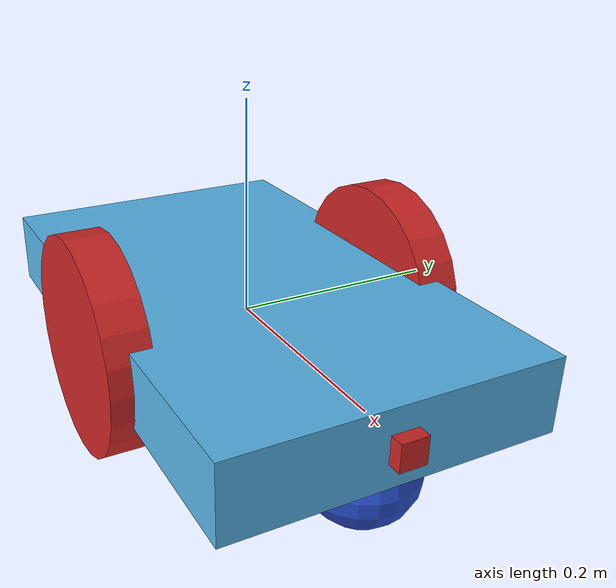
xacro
<?xml version="1.0" ?>
<robot name="robot" xmlns:xacro="http://www.ros.org/wiki/xacro">

  <xacro:include filename="$(find robot_description)/urdf/camera.xacro" />
  <xacro:include filename="$(find robot_description)/urdf/caster.xacro" />
  <xacro:include filename="$(find robot_description)/urdf/plugins.xacro" />
  <xacro:include filename="$(find robot_description)/urdf/wheel.xacro" />

  <!-- Dummy -->
  <link name="dummy"></link>
  <joint name="dummy_joint" type="fixed">
    <parent link="dummy" />
    <child link="chassis" />
  </joint>

  <xacro:property name="chassis_mass" value="5.0" />
  <xacro:property name="chassis_size" value="0.5 0.3 0.07" />
  <link name="chassis">
    <!-- pose and inertial -->
    <pose>0 0 0.1 0 0 0</pose>
    <inertial>
      <mass value="${chassis_mass}" />
      <origin rpy="0 0 0" xyz="0 0 0.1"/>
      <inertia ixx="0.0395416666667" ixy="0" ixz="0" iyy="0.106208333333" iyz="0" izz="0.106208333333"/>
    </inertial>
    <collision>
      <geometry>
        <box size="${chassis_size}" />
      </geometry>
    </collision>
    <visual>
      <origin rpy="0 0 0" xyz="0 0 0"/>
      <geometry>
        <box size="${chassis_size}"/>
      </geometry>
    </visual>
  </link>

  <!-- Wheels -->
  <xacro:wheel right="1" name="right" diameter="0.2" />
  <xacro:wheel right="0" name="left" diameter="0.2" />

  <!-- Caster -->
  <xacro:caster_sphere name="caster" diameter="0.1" origin="-0.20 0 -0.05" />
  <xacro:caster_sphere name="caster_back" diameter="0.1" origin="0.20 0 -0.05" />

  <!-- Camera -->
  <xacro:camera joint="joint_chassis_camera" link="link_camera" parent="chassis" />
</robot>

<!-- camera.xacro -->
<robot xmlns:xacro="http://www.ros.org/wiki/xacro">
  <xacro:macro name="camera" params="link joint parent">
    <!-- Joint -->
    <joint name="${joint}" type="fixed">
      <axis xyz="0 1 0" />
      <origin xyz="0.25 0 0" rpy="0 0 0" />
      <parent link="${parent}" />
      <child link="${link}" />
    </joint>
    <!-- Link -->
    <link name="${link}">
      <collision>
        <origin xyz="0 0 0" rpy="0 0 0"/>
        <geometry>
          <box size="0.025 0.025 0.025"/>
        </geometry>
      </collision>
      <visual>
        <origin xyz="0 0 0" rpy="0 0 0"/>
        <geometry>
          <box size="0.025 0.025 0.025"/>
        </geometry>
        <material name="red"/>
      </visual>
      <inertial>
        <mass value="1e-5" />
        <origin xyz="0 0 0" rpy="0 0 0"/>
        <inertia ixx="1e-6" ixy="0" ixz="0" iyy="1e-6" iyz="0" izz="1e-6" />
      </inertial>
    </link>
  </xacro:macro>
</robot>

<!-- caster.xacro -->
<robot xmlns:xacro="http://www.ros.org/wiki/xacro">
  <xacro:macro name="caster_sphere" params="name diameter origin">
    <gazebo reference="${name}_caster">
      <mu1>0.0</mu1>
      <mu2>0.0</mu2>
      <material>Gazebo/Blue</material>
    </gazebo>
    <link name="${name}_caster">
      <inertial>
        <mass value="0.2"/>
        <origin rpy="0 0 0" xyz="0 0 0"/>
        <inertia ixx="0.000526666666667" ixy="0" ixz="0" iyy="0.000526666666667" iyz="0" izz="0.001"/>
      </inertial>
      <collision>
        <origin rpy="0 0 0" xyz="0 0 0"/>
        <geometry>
          <sphere radius="${diameter/2}"/>
        </geometry>
      </collision>
      <visual>
        <origin rpy="0 0 0" xyz="0 0 0"/>
        <geometry>
          <sphere radius="${diameter/2}"/>
        </geometry>
      </visual>
    </link>
    <gazebo reference="joint_${name}_caster">
      <preserveFixedJoint>true</preserveFixedJoint>
    </gazebo>
    <joint name="joint_${name}_caster" type="continuous">
      <origin rpy="0 0 0" xyz="${origin}"/>
      <child link="${name}_caster"/>
      <parent link="chassis"/>
      <axis rpy="0 0 0" xyz="0 1 0"/>
      <limit effort="10000" velocity="1000"/>
      <joint_properties damping="1.0" friction="1.0"/>
    </joint>
  </xacro:macro>
</robot>

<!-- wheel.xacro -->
<robot xmlns:xacro="http://www.ros.org/wiki/xacro">
  <xacro:macro name="wheel" params="name diameter right">
    <gazebo reference="${name}_wheel">
      <material>Gazebo/Red</material>
    </gazebo>
    <link name="${name}_wheel">
      <inertial>
        <mass value="0.2"/>
        <origin rpy="0 1.5707 1.5707" xyz="0 0 0"/>
        <inertia ixx="0.000526666666667" ixy="0" ixz="0" iyy="0.000526666666667" iyz="0" izz="0.001"/>
      </inertial>
      <collision>
        <origin rpy="0 1.5707 1.5707" xyz="0 0 0"/>
        <geometry>
          <cylinder length="0.04" radius="${diameter/2}"/>
        </geometry>
      </collision>
      <visual>
        <origin rpy="0 1.5707 1.5707" xyz="0 0 0"/>
        <geometry>
          <cylinder length="0.04" radius="${diameter/2}"/>
        </geometry>
      </visual>
    </link>
    <joint name="joint_${name}_wheel" type="continuous">
      <xacro:if value="${right == 1}">
        <origin rpy="0 0 0" xyz="0 -0.15 0" />
      </xacro:if>
      <xacro:if value="${right == 0}">
        <origin rpy="0 0 0" xyz="0 0.15 0" />
      </xacro:if>
      <child link="${name}_wheel"/>
      <parent link="chassis"/>
      <axis rpy="0 0 0" xyz="0 1 0"/>
      <limit effort="10000" velocity="1000"/>
      <joint_properties damping="1.0" friction="1.0"/>
    </joint>
  </xacro:macro>
</robot>
